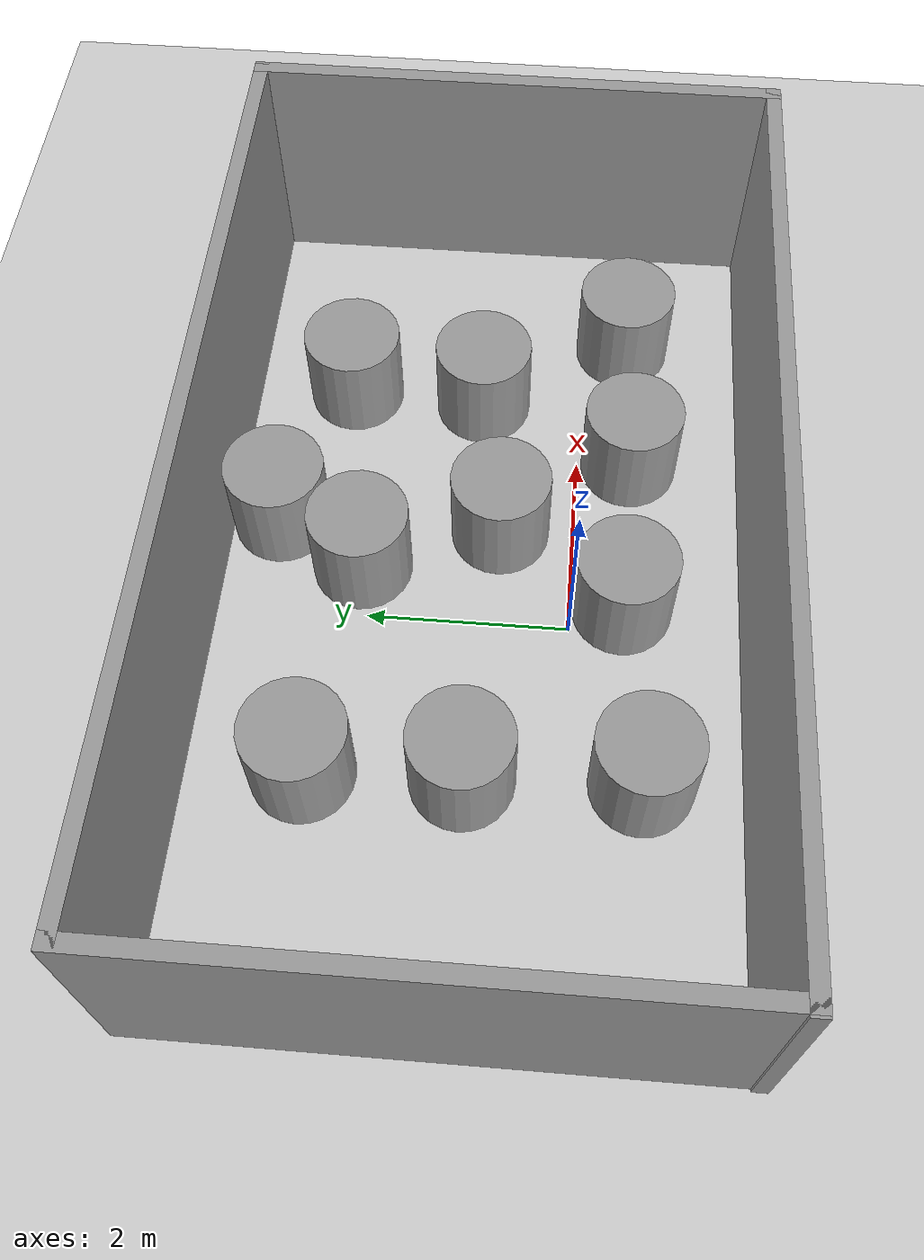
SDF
<sdf version="1.7">
 <world name="default">
  <model name="ground_plane">
   <static>1</static>
   <link name="link">
    <collision name="collision">
     <geometry><plane><normal>0 0 1</normal><size>100 100</size></plane></geometry>
     <surface>
      <contact><collide_bitmask>65535</collide_bitmask></contact>
      <friction><ode><mu>100</mu><mu2>50</mu2></ode></friction>
     </surface>
    </collision>
    <visual name="visual">
     <cast_shadows>0</cast_shadows>
     <geometry><plane><normal>0 0 1</normal><size>100 100</size></plane></geometry>
     <material>
      <script><uri>file://media/materials/scripts/gazebo.material</uri><name>Gazebo/Grey</name></script>
     </material>
    </visual>
   </link>
  </model>
  <physics type="ode">
   <real_time_update_rate>1000</real_time_update_rate>
   <max_step_size>0.001</max_step_size>
   <real_time_factor>1</real_time_factor>
   <ode>
    <solver>
     <type>quick</type>
     <iters>150</iters>
     <precon_iters>0</precon_iters>
     <sor>1.4</sor>
     <use_dynamic_moi_rescaling>1</use_dynamic_moi_rescaling>
    </solver>
    <constraints>
     <cfm>1e-05</cfm>
     <erp>0.2</erp>
     <contact_max_correcting_vel>2000</contact_max_correcting_vel>
     <contact_surface_layer>0.01</contact_surface_layer>
    </constraints>
   </ode>
  </physics>
  <scene><ambient>0.4 0.4 0.4 1</ambient><background>0.7 0.7 0.7 1</background><shadows>1</shadows></scene>
  <gravity>0 0 -9.8</gravity>
  <magnetic_field>6e-06 2.3e-05 -4.2e-05</magnetic_field>
  <atmosphere type="adiabatic"/>
  <spherical_coordinates>
   <surface_model>EARTH_WGS84</surface_model>
   <latitude_deg>0</latitude_deg>
   <longitude_deg>0</longitude_deg>
   <elevation>0</elevation>
   <heading_deg>0</heading_deg>
  </spherical_coordinates>
  <model name="rectangle">
   <pose>0.493028 0.90967 0 0 -0 0</pose>
   <link name="Wall_10">
    <collision name="Wall_10_Collision">
     <geometry><box><size>9.33624 0.15 2.5</size></box></geometry>
     <pose>0 0 1.25 0 -0 0</pose>
    </collision>
    <visual name="Wall_10_Visual">
     <pose>0 0 1.25 0 -0 0</pose>
     <geometry><box><size>9.33624 0.15 2.5</size></box></geometry>
     <material>
      <script><uri>file://media/materials/scripts/gazebo.material</uri><name>Gazebo/Grey</name></script>
      <ambient>1 1 1 1</ambient>
     </material>
     <meta><layer>0</layer></meta>
    </visual>
    <pose>0.011697 2.675 0 0 -0 0</pose>
   </link>
   <link name="Wall_5">
    <collision name="Wall_5_Collision">
     <geometry><box><size>5.5 0.15 2.5</size></box></geometry>
     <pose>0 0 1.25 0 -0 0</pose>
    </collision>
    <visual name="Wall_5_Visual">
     <pose>0 0 1.25 0 -0 0</pose>
     <geometry><box><size>5.5 0.15 2.5</size></box></geometry>
     <material>
      <script><uri>file://media/materials/scripts/gazebo.material</uri><name>Gazebo/Grey</name></script>
      <ambient>1 1 1 1</ambient>
     </material>
     <meta><layer>0</layer></meta>
    </visual>
    <pose>-4.58142 0 0 0 -0 1.5708</pose>
   </link>
   <link name="Wall_7">
    <collision name="Wall_7_Collision">
     <geometry><box><size>9.35964 0.15 2.5</size></box></geometry>
     <pose>0 0 1.25 0 -0 0</pose>
    </collision>
    <visual name="Wall_7_Visual">
     <pose>0 0 1.25 0 -0 0</pose>
     <geometry><box><size>9.35964 0.15 2.5</size></box></geometry>
     <material>
      <script><uri>file://media/materials/scripts/gazebo.material</uri><name>Gazebo/Grey</name></script>
      <ambient>1 1 1 1</ambient>
     </material>
     <meta><layer>0</layer></meta>
    </visual>
    <pose>-0 -2.675 0 0 -0 0</pose>
   </link>
   <link name="Wall_8">
    <collision name="Wall_8_Collision">
     <geometry><box><size>5.5 0.15 2.5</size></box></geometry>
     <pose>0 0 1.25 0 -0 0</pose>
    </collision>
    <visual name="Wall_8_Visual">
     <pose>0 0 1.25 0 -0 0</pose>
     <geometry><box><size>5.5 0.15 2.5</size></box></geometry>
     <material>
      <script><uri>file://media/materials/scripts/gazebo.material</uri><name>Gazebo/Grey</name></script>
      <ambient>1 1 1 1</ambient>
     </material>
     <meta><layer>0</layer></meta>
    </visual>
    <pose>4.60482 0 0 0 -0 1.5708</pose>
   </link>
   <static>1</static>
  </model>
  <model name="unit_cylinder">
   <pose>-1.70186 2.39497 0.499995 -2e-06 2e-06 -0.009463</pose>
   <link name="link">
    <inertial>
     <mass>1</mass>
     <inertia><ixx>0.145833</ixx><ixy>0</ixy><ixz>0</ixz><iyy>0.145833</iyy><iyz>0</iyz><izz>0.125</izz></inertia>
    </inertial>
    <collision name="collision">
     <geometry><cylinder><radius>0.5</radius><length>1</length></cylinder></geometry>
    </collision>
    <visual name="visual">
     <geometry><cylinder><radius>0.5</radius><length>1</length></cylinder></geometry>
     <material>
      <script><name>Gazebo/Grey</name><uri>file://media/materials/scripts/gazebo.material</uri></script>
     </material>
    </visual>
   </link>
  </model>
  <model name="unit_cylinder_0">
   <pose>0.265649 -0.515862 0.499993 4e-06 4e-06 -0.028289</pose>
   <link name="link">
    <inertial>
     <mass>1</mass>
     <inertia><ixx>0.145833</ixx><ixy>0</ixy><ixz>0</ixz><iyy>0.145833</iyy><iyz>0</iyz><izz>0.125</izz></inertia>
    </inertial>
    <collision name="collision">
     <geometry><cylinder><radius>0.5</radius><length>1</length></cylinder></geometry>
    </collision>
    <visual name="visual">
     <geometry><cylinder><radius>0.5</radius><length>1</length></cylinder></geometry>
     <material>
      <script><name>Gazebo/Grey</name><uri>file://media/materials/scripts/gazebo.material</uri></script>
     </material>
    </visual>
   </link>
  </model>
  <model name="unit_cylinder_1">
   <pose>-1.66085 0.914274 0.499991 0 -0 -0.009709</pose>
   <link name="link">
    <inertial>
     <mass>1</mass>
     <inertia><ixx>0.145833</ixx><ixy>0</ixy><ixz>0</ixz><iyy>0.145833</iyy><iyz>0</iyz><izz>0.125</izz></inertia>
    </inertial>
    <collision name="collision">
     <geometry><cylinder><radius>0.5</radius><length>1</length></cylinder></geometry>
    </collision>
    <visual name="visual">
     <geometry><cylinder><radius>0.5</radius><length>1</length></cylinder></geometry>
     <material>
      <script><name>Gazebo/Grey</name><uri>file://media/materials/scripts/gazebo.material</uri></script>
     </material>
    </visual>
   </link>
  </model>
  <model name="unit_cylinder_2">
   <pose>0.574884 2.1123 0.499997 -1e-06 -1e-06 -0.011085</pose>
   <link name="link">
    <inertial>
     <mass>1</mass>
     <inertia><ixx>0.145833</ixx><ixy>0</ixy><ixz>0</ixz><iyy>0.145833</iyy><iyz>0</iyz><izz>0.125</izz></inertia>
    </inertial>
    <collision name="collision">
     <geometry><cylinder><radius>0.5</radius><length>1</length></cylinder></geometry>
    </collision>
    <visual name="visual">
     <geometry><cylinder><radius>0.5</radius><length>1</length></cylinder></geometry>
     <material>
      <script><name>Gazebo/Grey</name><uri>file://media/materials/scripts/gazebo.material</uri></script>
     </material>
    </visual>
   </link>
  </model>
  <model name="unit_cylinder_3">
   <pose>-1.58538 -0.744632 0.5 0 0 -0.020789</pose>
   <link name="link">
    <inertial>
     <mass>1</mass>
     <inertia><ixx>0.145833</ixx><ixy>0</ixy><ixz>0</ixz><iyy>0.145833</iyy><iyz>0</iyz><izz>0.125</izz></inertia>
    </inertial>
    <collision name="collision">
     <geometry><cylinder><radius>0.5</radius><length>1</length></cylinder></geometry>
    </collision>
    <visual name="visual">
     <geometry><cylinder><radius>0.5</radius><length>1</length></cylinder></geometry>
     <material>
      <script><name>Gazebo/Grey</name><uri>file://media/materials/scripts/gazebo.material</uri></script>
     </material>
    </visual>
   </link>
  </model>
  <model name="unit_cylinder_4">
   <pose>1.06212 3.00715 0.499998 3e-06 -3e-06 0.025148</pose>
   <link name="link">
    <inertial>
     <mass>1</mass>
     <inertia><ixx>0.145833</ixx><ixy>0</ixy><ixz>0</ixz><iyy>0.145833</iyy><iyz>0</iyz><izz>0.125</izz></inertia>
    </inertial>
    <collision name="collision">
     <geometry><cylinder><radius>0.5</radius><length>1</length></cylinder></geometry>
    </collision>
    <visual name="visual">
     <geometry><cylinder><radius>0.5</radius><length>1</length></cylinder></geometry>
     <material>
      <script><name>Gazebo/Grey</name><uri>file://media/materials/scripts/gazebo.material</uri></script>
     </material>
    </visual>
   </link>
  </model>
  <model name="unit_cylinder_5">
   <pose>1.09001 0.754745 0.499999 1e-06 -0 0.013932</pose>
   <link name="link">
    <inertial>
     <mass>1</mass>
     <inertia><ixx>0.145833</ixx><ixy>0</ixy><ixz>0</ixz><iyy>0.145833</iyy><iyz>0</iyz><izz>0.125</izz></inertia>
    </inertial>
    <collision name="collision">
     <geometry><cylinder><radius>0.5</radius><length>1</length></cylinder></geometry>
    </collision>
    <visual name="visual">
     <geometry><cylinder><radius>0.5</radius><length>1</length></cylinder></geometry>
     <material>
      <script><name>Gazebo/Grey</name><uri>file://media/materials/scripts/gazebo.material</uri></script>
     </material>
    </visual>
   </link>
  </model>
  <model name="unit_cylinder_6">
   <pose>2.78983 2.44672 0.499994 -1e-06 1e-06 0</pose>
   <link name="link">
    <inertial>
     <mass>1</mass>
     <inertia><ixx>0.145833</ixx><ixy>0</ixy><ixz>0</ixz><iyy>0.145833</iyy><iyz>0</iyz><izz>0.125</izz></inertia>
    </inertial>
    <collision name="collision">
     <geometry><cylinder><radius>0.5</radius><length>1</length></cylinder></geometry>
    </collision>
    <visual name="visual">
     <geometry><cylinder><radius>0.5</radius><length>1</length></cylinder></geometry>
     <material>
      <script><name>Gazebo/Grey</name><uri>file://media/materials/scripts/gazebo.material</uri></script>
     </material>
    </visual>
   </link>
  </model>
  <model name="unit_cylinder_7">
   <pose>2.72924 1.05454 0.499997 -4e-06 4e-06 0.024473</pose>
   <link name="link">
    <inertial>
     <mass>1</mass>
     <inertia><ixx>0.145833</ixx><ixy>0</ixy><ixz>0</ixz><iyy>0.145833</iyy><iyz>0</iyz><izz>0.125</izz></inertia>
    </inertial>
    <collision name="collision">
     <geometry><cylinder><radius>0.5</radius><length>1</length></cylinder></geometry>
    </collision>
    <visual name="visual">
     <geometry><cylinder><radius>0.5</radius><length>1</length></cylinder></geometry>
     <material>
      <script><name>Gazebo/Grey</name><uri>file://media/materials/scripts/gazebo.material</uri></script>
     </material>
    </visual>
   </link>
  </model>
  <model name="unit_cylinder_8">
   <pose>2.01592 -0.540701 0.499993 4e-06 4e-06 -0.004608</pose>
   <link name="link">
    <inertial>
     <mass>1</mass>
     <inertia><ixx>0.145833</ixx><ixy>0</ixy><ixz>0</ixz><iyy>0.145833</iyy><iyz>0</iyz><izz>0.125</izz></inertia>
    </inertial>
    <collision name="collision">
     <geometry><cylinder><radius>0.5</radius><length>1</length></cylinder></geometry>
    </collision>
    <visual name="visual">
     <geometry><cylinder><radius>0.5</radius><length>1</length></cylinder></geometry>
     <material>
      <script><name>Gazebo/Grey</name><uri>file://media/materials/scripts/gazebo.material</uri></script>
     </material>
    </visual>
   </link>
  </model>
  <light name="sun" type="directional">
   <pose>0.387189 -1.19811 10 0 -0 0</pose>
   <diffuse>0.8 0.8 0.8 1</diffuse>
   <specular>0.2 0.2 0.2 1</specular>
   <attenuation>
    <range>1000</range>
    <constant>0.9</constant>
    <linear>0.01</linear>
    <quadratic>0.001</quadratic>
   </attenuation>
   <direction>-0.5 0.1 -0.9</direction>
   <spot><inner_angle>0</inner_angle><outer_angle>0</outer_angle><falloff>0</falloff></spot>
  </light>
  <model name="unit_cylinder_9">
   <pose>3.60735 -0.432026 0.499998 -4e-06 -4e-06 1e-05</pose>
   <link name="link">
    <inertial>
     <mass>1</mass>
     <inertia><ixx>0.145833</ixx><ixy>0</ixy><ixz>0</ixz><iyy>0.145833</iyy><iyz>0</iyz><izz>0.125</izz></inertia>
    </inertial>
    <collision name="collision">
     <geometry><cylinder><radius>0.5</radius><length>1</length></cylinder></geometry>
    </collision>
    <visual name="visual">
     <geometry><cylinder><radius>0.5</radius><length>1</length></cylinder></geometry>
     <material>
      <script><name>Gazebo/Grey</name><uri>file://media/materials/scripts/gazebo.material</uri></script>
     </material>
    </visual>
   </link>
  </model>
 </world>
</sdf>
